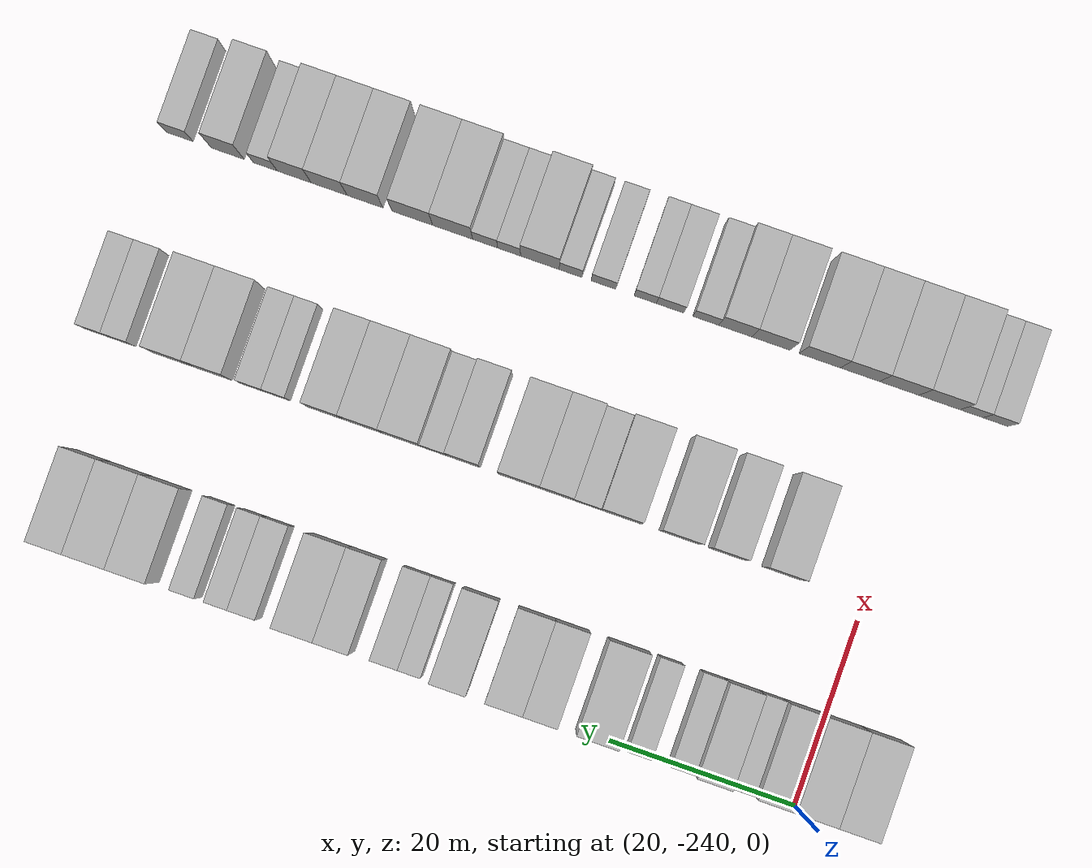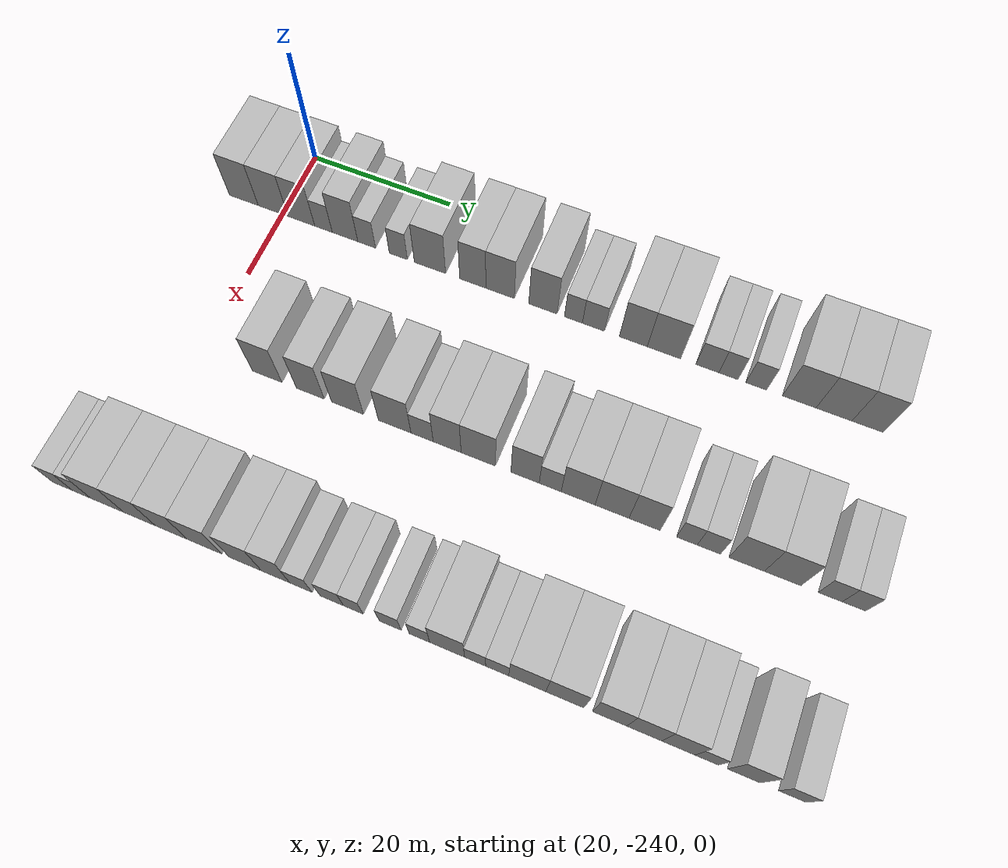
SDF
<sdf version="1.6">
 <world name="default">
  <model name="building_1">
   <static>1</static>
   <pose>25.0000 -245.8215 0 0.000000 0.000000 0.000000</pose>
   <link name="link">
    <pose>0 0 4.50 0 0 0</pose>
    <collision name="collision"><geometry><box><size>10.0000 4.3570 9.0000</size></box></geometry></collision>
    <visual name="visual">
     <cast_shadows>0</cast_shadows>
     <geometry><box><size>10.0000 4.3570 9.0000</size></box></geometry>
     <material>
      <script>
       <uri>model://HANNAS_wall/materials/scripts</uri>
       <uri>model://HANNAS_wall/materials/textures</uri>
       <name>vrc/HANNAS_wall</name>
      </script>
     </material>
    </visual>
   </link>
  </model>
  <model name="building_2">
   <static>1</static>
   <pose>25.0000 -241.4256 0 0.000000 0.000000 0.000000</pose>
   <link name="link">
    <pose>0 0 4.50 0 0 0</pose>
    <collision name="collision"><geometry><box><size>10.0000 4.4348 9.0000</size></box></geometry></collision>
    <visual name="visual">
     <cast_shadows>0</cast_shadows>
     <geometry><box><size>10.0000 4.4348 9.0000</size></box></geometry>
     <material>
      <script>
       <uri>model://HANNAS_wall/materials/scripts</uri>
       <uri>model://HANNAS_wall/materials/textures</uri>
       <name>vrc/HANNAS_wall</name>
      </script>
     </material>
    </visual>
   </link>
  </model>
  <model name="building_3">
   <static>1</static>
   <pose>25.0000 -237.2090 0 0.000000 0.000000 0.000000</pose>
   <link name="link">
    <pose>0 0 4.50 0 0 0</pose>
    <collision name="collision"><geometry><box><size>10.0000 3.9985 9.0000</size></box></geometry></collision>
    <visual name="visual">
     <cast_shadows>0</cast_shadows>
     <geometry><box><size>10.0000 3.9985 9.0000</size></box></geometry>
     <material>
      <script>
       <uri>model://HANNAS_wall/materials/scripts</uri>
       <uri>model://HANNAS_wall/materials/textures</uri>
       <name>vrc/HANNAS_wall</name>
      </script>
     </material>
    </visual>
   </link>
  </model>
  <model name="building_4">
   <static>1</static>
   <pose>25.0000 -233.9132 0 0.000000 0.000000 0.000000</pose>
   <link name="link">
    <pose>0 0 3.00 0 0 0</pose>
    <collision name="collision"><geometry><box><size>10.0000 2.5930 6.0000</size></box></geometry></collision>
    <visual name="visual">
     <cast_shadows>0</cast_shadows>
     <geometry><box><size>10.0000 2.5930 6.0000</size></box></geometry>
     <material>
      <script>
       <uri>model://HANNAS_wall/materials/scripts</uri>
       <uri>model://HANNAS_wall/materials/textures</uri>
       <name>vrc/HANNAS_wall</name>
      </script>
     </material>
    </visual>
   </link>
  </model>
  <model name="building_5">
   <static>1</static>
   <pose>25.0000 -230.7434 0 0.000000 0.000000 0.000000</pose>
   <link name="link">
    <pose>0 0 4.50 0 0 0</pose>
    <collision name="collision"><geometry><box><size>10.0000 3.7467 9.0000</size></box></geometry></collision>
    <visual name="visual">
     <cast_shadows>0</cast_shadows>
     <geometry><box><size>10.0000 3.7467 9.0000</size></box></geometry>
     <material>
      <script>
       <uri>model://HANNAS_wall/materials/scripts</uri>
       <uri>model://HANNAS_wall/materials/textures</uri>
       <name>vrc/HANNAS_wall</name>
      </script>
     </material>
    </visual>
   </link>
  </model>
  <model name="building_6">
   <static>1</static>
   <pose>25.0000 -227.5806 0 0.000000 0.000000 0.000000</pose>
   <link name="link">
    <pose>0 0 3.00 0 0 0</pose>
    <collision name="collision"><geometry><box><size>10.0000 2.5790 6.0000</size></box></geometry></collision>
    <visual name="visual">
     <cast_shadows>0</cast_shadows>
     <geometry><box><size>10.0000 2.5790 6.0000</size></box></geometry>
     <material>
      <script>
       <uri>model://HANNAS_wall/materials/scripts</uri>
       <uri>model://HANNAS_wall/materials/textures</uri>
       <name>vrc/HANNAS_wall</name>
      </script>
     </material>
    </visual>
   </link>
  </model>
  <model name="building_7">
   <static>1</static>
   <pose>25.0000 -222.9934 0 0.000000 0.000000 0.000000</pose>
   <link name="link">
    <pose>0 0 3.00 0 0 0</pose>
    <collision name="collision"><geometry><box><size>10.0000 2.5954 6.0000</size></box></geometry></collision>
    <visual name="visual">
     <cast_shadows>0</cast_shadows>
     <geometry><box><size>10.0000 2.5954 6.0000</size></box></geometry>
     <material>
      <script>
       <uri>model://HANNAS_wall/materials/scripts</uri>
       <uri>model://HANNAS_wall/materials/textures</uri>
       <name>vrc/HANNAS_wall</name>
      </script>
     </material>
    </visual>
   </link>
  </model>
  <model name="building_8">
   <static>1</static>
   <pose>25.0000 -218.4736 0 0.000000 0.000000 0.000000</pose>
   <link name="link">
    <pose>0 0 4.50 0 0 0</pose>
    <collision name="collision"><geometry><box><size>10.0000 4.4441 9.0000</size></box></geometry></collision>
    <visual name="visual">
     <cast_shadows>0</cast_shadows>
     <geometry><box><size>10.0000 4.4441 9.0000</size></box></geometry>
     <material>
      <script>
       <uri>model://HANNAS_wall/materials/scripts</uri>
       <uri>model://HANNAS_wall/materials/textures</uri>
       <name>vrc/HANNAS_wall</name>
      </script>
     </material>
    </visual>
   </link>
  </model>
  <model name="building_9">
   <static>1</static>
   <pose>25.0000 -212.4224 0 0.000000 0.000000 0.000000</pose>
   <link name="link">
    <pose>0 0 4.50 0 0 0</pose>
    <collision name="collision"><geometry><box><size>10.0000 3.6583 9.0000</size></box></geometry></collision>
    <visual name="visual">
     <cast_shadows>0</cast_shadows>
     <geometry><box><size>10.0000 3.6583 9.0000</size></box></geometry>
     <material>
      <script>
       <uri>model://HANNAS_wall/materials/scripts</uri>
       <uri>model://HANNAS_wall/materials/textures</uri>
       <name>vrc/HANNAS_wall</name>
      </script>
     </material>
    </visual>
   </link>
  </model>
  <model name="building_10">
   <static>1</static>
   <pose>25.0000 -208.6044 0 0.000000 0.000000 0.000000</pose>
   <link name="link">
    <pose>0 0 4.50 0 0 0</pose>
    <collision name="collision"><geometry><box><size>10.0000 3.9778 9.0000</size></box></geometry></collision>
    <visual name="visual">
     <cast_shadows>0</cast_shadows>
     <geometry><box><size>10.0000 3.9778 9.0000</size></box></geometry>
     <material>
      <script>
       <uri>model://HANNAS_wall/materials/scripts</uri>
       <uri>model://HANNAS_wall/materials/textures</uri>
       <name>vrc/HANNAS_wall</name>
      </script>
     </material>
    </visual>
   </link>
  </model>
  <model name="building_11">
   <static>1</static>
   <pose>25.0000 -202.6700 0 0.000000 0.000000 0.000000</pose>
   <link name="link">
    <pose>0 0 4.50 0 0 0</pose>
    <collision name="collision"><geometry><box><size>10.0000 3.8910 9.0000</size></box></geometry></collision>
    <visual name="visual">
     <cast_shadows>0</cast_shadows>
     <geometry><box><size>10.0000 3.8910 9.0000</size></box></geometry>
     <material>
      <script>
       <uri>model://HANNAS_wall/materials/scripts</uri>
       <uri>model://HANNAS_wall/materials/textures</uri>
       <name>vrc/HANNAS_wall</name>
      </script>
     </material>
    </visual>
   </link>
  </model>
  <model name="building_12">
   <static>1</static>
   <pose>25.0000 -198.5001 0 0.000000 0.000000 0.000000</pose>
   <link name="link">
    <pose>0 0 3.00 0 0 0</pose>
    <collision name="collision"><geometry><box><size>10.0000 2.4487 6.0000</size></box></geometry></collision>
    <visual name="visual">
     <cast_shadows>0</cast_shadows>
     <geometry><box><size>10.0000 2.4487 6.0000</size></box></geometry>
     <material>
      <script>
       <uri>model://HANNAS_wall/materials/scripts</uri>
       <uri>model://HANNAS_wall/materials/textures</uri>
       <name>vrc/HANNAS_wall</name>
      </script>
     </material>
    </visual>
   </link>
  </model>
  <model name="building_13">
   <static>1</static>
   <pose>25.0000 -195.7858 0 0.000000 0.000000 0.000000</pose>
   <link name="link">
    <pose>0 0 3.00 0 0 0</pose>
    <collision name="collision"><geometry><box><size>10.0000 2.9799 6.0000</size></box></geometry></collision>
    <visual name="visual">
     <cast_shadows>0</cast_shadows>
     <geometry><box><size>10.0000 2.9799 6.0000</size></box></geometry>
     <material>
      <script>
       <uri>model://HANNAS_wall/materials/scripts</uri>
       <uri>model://HANNAS_wall/materials/textures</uri>
       <name>vrc/HANNAS_wall</name>
      </script>
     </material>
    </visual>
   </link>
  </model>
  <model name="building_14">
   <static>1</static>
   <pose>25.0000 -190.4258 0 0.000000 0.000000 0.000000</pose>
   <link name="link">
    <pose>0 0 4.50 0 0 0</pose>
    <collision name="collision"><geometry><box><size>10.0000 3.7402 9.0000</size></box></geometry></collision>
    <visual name="visual">
     <cast_shadows>0</cast_shadows>
     <geometry><box><size>10.0000 3.7402 9.0000</size></box></geometry>
     <material>
      <script>
       <uri>model://HANNAS_wall/materials/scripts</uri>
       <uri>model://HANNAS_wall/materials/textures</uri>
       <name>vrc/HANNAS_wall</name>
      </script>
     </material>
    </visual>
   </link>
  </model>
  <model name="building_15">
   <static>1</static>
   <pose>25.0000 -186.3539 0 0.000000 0.000000 0.000000</pose>
   <link name="link">
    <pose>0 0 4.50 0 0 0</pose>
    <collision name="collision"><geometry><box><size>10.0000 4.4036 9.0000</size></box></geometry></collision>
    <visual name="visual">
     <cast_shadows>0</cast_shadows>
     <geometry><box><size>10.0000 4.4036 9.0000</size></box></geometry>
     <material>
      <script>
       <uri>model://HANNAS_wall/materials/scripts</uri>
       <uri>model://HANNAS_wall/materials/textures</uri>
       <name>vrc/HANNAS_wall</name>
      </script>
     </material>
    </visual>
   </link>
  </model>
  <model name="building_16">
   <static>1</static>
   <pose>25.0000 -180.6609 0 0.000000 0.000000 0.000000</pose>
   <link name="link">
    <pose>0 0 3.00 0 0 0</pose>
    <collision name="collision"><geometry><box><size>10.0000 2.9824 6.0000</size></box></geometry></collision>
    <visual name="visual">
     <cast_shadows>0</cast_shadows>
     <geometry><box><size>10.0000 2.9824 6.0000</size></box></geometry>
     <material>
      <script>
       <uri>model://HANNAS_wall/materials/scripts</uri>
       <uri>model://HANNAS_wall/materials/textures</uri>
       <name>vrc/HANNAS_wall</name>
      </script>
     </material>
    </visual>
   </link>
  </model>
  <model name="building_17">
   <static>1</static>
   <pose>25.0000 -177.9224 0 0.000000 0.000000 0.000000</pose>
   <link name="link">
    <pose>0 0 3.00 0 0 0</pose>
    <collision name="collision"><geometry><box><size>10.0000 2.4946 6.0000</size></box></geometry></collision>
    <visual name="visual">
     <cast_shadows>0</cast_shadows>
     <geometry><box><size>10.0000 2.4946 6.0000</size></box></geometry>
     <material>
      <script>
       <uri>model://HANNAS_wall/materials/scripts</uri>
       <uri>model://HANNAS_wall/materials/textures</uri>
       <name>vrc/HANNAS_wall</name>
      </script>
     </material>
    </visual>
   </link>
  </model>
  <model name="building_18">
   <static>1</static>
   <pose>25.0000 -174.3365 0 0.000000 0.000000 0.000000</pose>
   <link name="link">
    <pose>0 0 3.00 0 0 0</pose>
    <collision name="collision"><geometry><box><size>10.0000 2.6771 6.0000</size></box></geometry></collision>
    <visual name="visual">
     <cast_shadows>0</cast_shadows>
     <geometry><box><size>10.0000 2.6771 6.0000</size></box></geometry>
     <material>
      <script>
       <uri>model://HANNAS_wall/materials/scripts</uri>
       <uri>model://HANNAS_wall/materials/textures</uri>
       <name>vrc/HANNAS_wall</name>
      </script>
     </material>
    </visual>
   </link>
  </model>
  <model name="building_19">
   <static>1</static>
   <pose>25.0000 -168.8597 0 0.000000 0.000000 0.000000</pose>
   <link name="link">
    <pose>0 0 4.50 0 0 0</pose>
    <collision name="collision"><geometry><box><size>10.0000 4.2764 9.0000</size></box></geometry></collision>
    <visual name="visual">
     <cast_shadows>0</cast_shadows>
     <geometry><box><size>10.0000 4.2764 9.0000</size></box></geometry>
     <material>
      <script>
       <uri>model://HANNAS_wall/materials/scripts</uri>
       <uri>model://HANNAS_wall/materials/textures</uri>
       <name>vrc/HANNAS_wall</name>
      </script>
     </material>
    </visual>
   </link>
  </model>
  <model name="building_20">
   <static>1</static>
   <pose>25.0000 -164.4716 0 0.000000 0.000000 0.000000</pose>
   <link name="link">
    <pose>0 0 4.50 0 0 0</pose>
    <collision name="collision"><geometry><box><size>10.0000 4.4997 9.0000</size></box></geometry></collision>
    <visual name="visual">
     <cast_shadows>0</cast_shadows>
     <geometry><box><size>10.0000 4.4997 9.0000</size></box></geometry>
     <material>
      <script>
       <uri>model://HANNAS_wall/materials/scripts</uri>
       <uri>model://HANNAS_wall/materials/textures</uri>
       <name>vrc/HANNAS_wall</name>
      </script>
     </material>
    </visual>
   </link>
  </model>
  <model name="building_21">
   <static>1</static>
   <pose>25.0000 -160.2888 0 0.000000 0.000000 0.000000</pose>
   <link name="link">
    <pose>0 0 4.50 0 0 0</pose>
    <collision name="collision"><geometry><box><size>10.0000 3.8659 9.0000</size></box></geometry></collision>
    <visual name="visual">
     <cast_shadows>0</cast_shadows>
     <geometry><box><size>10.0000 3.8659 9.0000</size></box></geometry>
     <material>
      <script>
       <uri>model://HANNAS_wall/materials/scripts</uri>
       <uri>model://HANNAS_wall/materials/textures</uri>
       <name>vrc/HANNAS_wall</name>
      </script>
     </material>
    </visual>
   </link>
  </model>
  <model name="building_124">
   <static>1</static>
   <pose>47.0000 -230.8394 0 0.000000 0.000000 0.000000</pose>
   <link name="link">
    <pose>0 0 4.50 0 0 0</pose>
    <collision name="collision"><geometry><box><size>10.0000 4.1071 9.0000</size></box></geometry></collision>
    <visual name="visual">
     <cast_shadows>0</cast_shadows>
     <geometry><box><size>10.0000 4.1071 9.0000</size></box></geometry>
     <material>
      <script>
       <uri>model://HANNAS_wall/materials/scripts</uri>
       <uri>model://HANNAS_wall/materials/textures</uri>
       <name>vrc/HANNAS_wall</name>
      </script>
     </material>
    </visual>
   </link>
  </model>
  <model name="building_125">
   <static>1</static>
   <pose>47.0000 -224.8711 0 0.000000 0.000000 0.000000</pose>
   <link name="link">
    <pose>0 0 4.50 0 0 0</pose>
    <collision name="collision"><geometry><box><size>10.0000 3.8296 9.0000</size></box></geometry></collision>
    <visual name="visual">
     <cast_shadows>0</cast_shadows>
     <geometry><box><size>10.0000 3.8296 9.0000</size></box></geometry>
     <material>
      <script>
       <uri>model://HANNAS_wall/materials/scripts</uri>
       <uri>model://HANNAS_wall/materials/textures</uri>
       <name>vrc/HANNAS_wall</name>
      </script>
     </material>
    </visual>
   </link>
  </model>
  <model name="building_126">
   <static>1</static>
   <pose>47.0000 -219.7895 0 0.000000 0.000000 0.000000</pose>
   <link name="link">
    <pose>0 0 4.50 0 0 0</pose>
    <collision name="collision"><geometry><box><size>10.0000 4.3335 9.0000</size></box></geometry></collision>
    <visual name="visual">
     <cast_shadows>0</cast_shadows>
     <geometry><box><size>10.0000 4.3335 9.0000</size></box></geometry>
     <material>
      <script>
       <uri>model://HANNAS_wall/materials/scripts</uri>
       <uri>model://HANNAS_wall/materials/textures</uri>
       <name>vrc/HANNAS_wall</name>
      </script>
     </material>
    </visual>
   </link>
  </model>
  <model name="building_127">
   <static>1</static>
   <pose>47.0000 -213.4430 0 0.000000 0.000000 0.000000</pose>
   <link name="link">
    <pose>0 0 4.50 0 0 0</pose>
    <collision name="collision"><geometry><box><size>10.0000 4.3595 9.0000</size></box></geometry></collision>
    <visual name="visual">
     <cast_shadows>0</cast_shadows>
     <geometry><box><size>10.0000 4.3595 9.0000</size></box></geometry>
     <material>
      <script>
       <uri>model://HANNAS_wall/materials/scripts</uri>
       <uri>model://HANNAS_wall/materials/textures</uri>
       <name>vrc/HANNAS_wall</name>
      </script>
     </material>
    </visual>
   </link>
  </model>
  <model name="building_128">
   <static>1</static>
   <pose>47.0000 -209.7880 0 0.000000 0.000000 0.000000</pose>
   <link name="link">
    <pose>0 0 3.00 0 0 0</pose>
    <collision name="collision"><geometry><box><size>10.0000 2.9506 6.0000</size></box></geometry></collision>
    <visual name="visual">
     <cast_shadows>0</cast_shadows>
     <geometry><box><size>10.0000 2.9506 6.0000</size></box></geometry>
     <material>
      <script>
       <uri>model://HANNAS_wall/materials/scripts</uri>
       <uri>model://HANNAS_wall/materials/textures</uri>
       <name>vrc/HANNAS_wall</name>
      </script>
     </material>
    </visual>
   </link>
  </model>
  <model name="building_129">
   <static>1</static>
   <pose>47.0000 -206.4836 0 0.000000 0.000000 0.000000</pose>
   <link name="link">
    <pose>0 0 4.50 0 0 0</pose>
    <collision name="collision"><geometry><box><size>10.0000 3.6582 9.0000</size></box></geometry></collision>
    <visual name="visual">
     <cast_shadows>0</cast_shadows>
     <geometry><box><size>10.0000 3.6582 9.0000</size></box></geometry>
     <material>
      <script>
       <uri>model://HANNAS_wall/materials/scripts</uri>
       <uri>model://HANNAS_wall/materials/textures</uri>
       <name>vrc/HANNAS_wall</name>
      </script>
     </material>
    </visual>
   </link>
  </model>
  <model name="building_130">
   <static>1</static>
   <pose>47.0000 -202.4238 0 0.000000 0.000000 0.000000</pose>
   <link name="link">
    <pose>0 0 4.50 0 0 0</pose>
    <collision name="collision"><geometry><box><size>10.0000 4.4614 9.0000</size></box></geometry></collision>
    <visual name="visual">
     <cast_shadows>0</cast_shadows>
     <geometry><box><size>10.0000 4.4614 9.0000</size></box></geometry>
     <material>
      <script>
       <uri>model://HANNAS_wall/materials/scripts</uri>
       <uri>model://HANNAS_wall/materials/textures</uri>
       <name>vrc/HANNAS_wall</name>
      </script>
     </material>
    </visual>
   </link>
  </model>
  <model name="building_131">
   <static>1</static>
   <pose>47.0000 -196.3855 0 0.000000 0.000000 0.000000</pose>
   <link name="link">
    <pose>0 0 4.50 0 0 0</pose>
    <collision name="collision"><geometry><box><size>10.0000 3.6152 9.0000</size></box></geometry></collision>
    <visual name="visual">
     <cast_shadows>0</cast_shadows>
     <geometry><box><size>10.0000 3.6152 9.0000</size></box></geometry>
     <material>
      <script>
       <uri>model://HANNAS_wall/materials/scripts</uri>
       <uri>model://HANNAS_wall/materials/textures</uri>
       <name>vrc/HANNAS_wall</name>
      </script>
     </material>
    </visual>
   </link>
  </model>
  <model name="building_132">
   <static>1</static>
   <pose>47.0000 -193.1857 0 0.000000 0.000000 0.000000</pose>
   <link name="link">
    <pose>0 0 3.00 0 0 0</pose>
    <collision name="collision"><geometry><box><size>10.0000 2.7845 6.0000</size></box></geometry></collision>
    <visual name="visual">
     <cast_shadows>0</cast_shadows>
     <geometry><box><size>10.0000 2.7845 6.0000</size></box></geometry>
     <material>
      <script>
       <uri>model://HANNAS_wall/materials/scripts</uri>
       <uri>model://HANNAS_wall/materials/textures</uri>
       <name>vrc/HANNAS_wall</name>
      </script>
     </material>
    </visual>
   </link>
  </model>
  <model name="building_133">
   <static>1</static>
   <pose>47.0000 -189.6607 0 0.000000 0.000000 0.000000</pose>
   <link name="link">
    <pose>0 0 4.50 0 0 0</pose>
    <collision name="collision"><geometry><box><size>10.0000 4.2655 9.0000</size></box></geometry></collision>
    <visual name="visual">
     <cast_shadows>0</cast_shadows>
     <geometry><box><size>10.0000 4.2655 9.0000</size></box></geometry>
     <material>
      <script>
       <uri>model://HANNAS_wall/materials/scripts</uri>
       <uri>model://HANNAS_wall/materials/textures</uri>
       <name>vrc/HANNAS_wall</name>
      </script>
     </material>
    </visual>
   </link>
  </model>
  <model name="building_134">
   <static>1</static>
   <pose>47.0000 -185.4129 0 0.000000 0.000000 0.000000</pose>
   <link name="link">
    <pose>0 0 4.50 0 0 0</pose>
    <collision name="collision"><geometry><box><size>10.0000 4.2299 9.0000</size></box></geometry></collision>
    <visual name="visual">
     <cast_shadows>0</cast_shadows>
     <geometry><box><size>10.0000 4.2299 9.0000</size></box></geometry>
     <material>
      <script>
       <uri>model://HANNAS_wall/materials/scripts</uri>
       <uri>model://HANNAS_wall/materials/textures</uri>
       <name>vrc/HANNAS_wall</name>
      </script>
     </material>
    </visual>
   </link>
  </model>
  <model name="building_135">
   <static>1</static>
   <pose>47.0000 -181.3724 0 0.000000 0.000000 0.000000</pose>
   <link name="link">
    <pose>0 0 4.50 0 0 0</pose>
    <collision name="collision"><geometry><box><size>10.0000 3.8512 9.0000</size></box></geometry></collision>
    <visual name="visual">
     <cast_shadows>0</cast_shadows>
     <geometry><box><size>10.0000 3.8512 9.0000</size></box></geometry>
     <material>
      <script>
       <uri>model://HANNAS_wall/materials/scripts</uri>
       <uri>model://HANNAS_wall/materials/textures</uri>
       <name>vrc/HANNAS_wall</name>
      </script>
     </material>
    </visual>
   </link>
  </model>
  <model name="building_136">
   <static>1</static>
   <pose>47.0000 -176.1915 0 0.000000 0.000000 0.000000</pose>
   <link name="link">
    <pose>0 0 3.00 0 0 0</pose>
    <collision name="collision"><geometry><box><size>10.0000 2.5106 6.0000</size></box></geometry></collision>
    <visual name="visual">
     <cast_shadows>0</cast_shadows>
     <geometry><box><size>10.0000 2.5106 6.0000</size></box></geometry>
     <material>
      <script>
       <uri>model://HANNAS_wall/materials/scripts</uri>
       <uri>model://HANNAS_wall/materials/textures</uri>
       <name>vrc/HANNAS_wall</name>
      </script>
     </material>
    </visual>
   </link>
  </model>
  <model name="building_137">
   <static>1</static>
   <pose>47.0000 -173.5220 0 0.000000 0.000000 0.000000</pose>
   <link name="link">
    <pose>0 0 3.00 0 0 0</pose>
    <collision name="collision"><geometry><box><size>10.0000 2.8283 6.0000</size></box></geometry></collision>
    <visual name="visual">
     <cast_shadows>0</cast_shadows>
     <geometry><box><size>10.0000 2.8283 6.0000</size></box></geometry>
     <material>
      <script>
       <uri>model://HANNAS_wall/materials/scripts</uri>
       <uri>model://HANNAS_wall/materials/textures</uri>
       <name>vrc/HANNAS_wall</name>
      </script>
     </material>
    </visual>
   </link>
  </model>
  <model name="building_138">
   <static>1</static>
   <pose>47.0000 -168.9888 0 0.000000 0.000000 0.000000</pose>
   <link name="link">
    <pose>0 0 4.50 0 0 0</pose>
    <collision name="collision"><geometry><box><size>10.0000 4.2382 9.0000</size></box></geometry></collision>
    <visual name="visual">
     <cast_shadows>0</cast_shadows>
     <geometry><box><size>10.0000 4.2382 9.0000</size></box></geometry>
     <material>
      <script>
       <uri>model://HANNAS_wall/materials/scripts</uri>
       <uri>model://HANNAS_wall/materials/textures</uri>
       <name>vrc/HANNAS_wall</name>
      </script>
     </material>
    </visual>
   </link>
  </model>
  <model name="building_139">
   <static>1</static>
   <pose>47.0000 -164.7018 0 0.000000 0.000000 0.000000</pose>
   <link name="link">
    <pose>0 0 4.50 0 0 0</pose>
    <collision name="collision"><geometry><box><size>10.0000 4.3357 9.0000</size></box></geometry></collision>
    <visual name="visual">
     <cast_shadows>0</cast_shadows>
     <geometry><box><size>10.0000 4.3357 9.0000</size></box></geometry>
     <material>
      <script>
       <uri>model://HANNAS_wall/materials/scripts</uri>
       <uri>model://HANNAS_wall/materials/textures</uri>
       <name>vrc/HANNAS_wall</name>
      </script>
     </material>
    </visual>
   </link>
  </model>
  <model name="building_140">
   <static>1</static>
   <pose>47.0000 -159.1398 0 0.000000 0.000000 0.000000</pose>
   <link name="link">
    <pose>0 0 3.00 0 0 0</pose>
    <collision name="collision"><geometry><box><size>10.0000 2.7884 6.0000</size></box></geometry></collision>
    <visual name="visual">
     <cast_shadows>0</cast_shadows>
     <geometry><box><size>10.0000 2.7884 6.0000</size></box></geometry>
     <material>
      <script>
       <uri>model://HANNAS_wall/materials/scripts</uri>
       <uri>model://HANNAS_wall/materials/textures</uri>
       <name>vrc/HANNAS_wall</name>
      </script>
     </material>
    </visual>
   </link>
  </model>
  <model name="building_141">
   <static>1</static>
   <pose>47.0000 -156.3905 0 0.000000 0.000000 0.000000</pose>
   <link name="link">
    <pose>0 0 3.00 0 0 0</pose>
    <collision name="collision"><geometry><box><size>10.0000 2.7101 6.0000</size></box></geometry></collision>
    <visual name="visual">
     <cast_shadows>0</cast_shadows>
     <geometry><box><size>10.0000 2.7101 6.0000</size></box></geometry>
     <material>
      <script>
       <uri>model://HANNAS_wall/materials/scripts</uri>
       <uri>model://HANNAS_wall/materials/textures</uri>
       <name>vrc/HANNAS_wall</name>
      </script>
     </material>
    </visual>
   </link>
  </model>
  <model name="building_246">
   <static>1</static>
   <pose>69.0000 -246.6401 0 0.000000 0.000000 0.000000</pose>
   <link name="link">
    <pose>0 0 3.00 0 0 0</pose>
    <collision name="collision"><geometry><box><size>10.0000 2.7199 6.0000</size></box></geometry></collision>
    <visual name="visual">
     <cast_shadows>0</cast_shadows>
     <geometry><box><size>10.0000 2.7199 6.0000</size></box></geometry>
     <material>
      <script>
       <uri>model://HANNAS_wall/materials/scripts</uri>
       <uri>model://HANNAS_wall/materials/textures</uri>
       <name>vrc/HANNAS_wall</name>
      </script>
     </material>
    </visual>
   </link>
  </model>
  <model name="building_247">
   <static>1</static>
   <pose>69.0000 -244.0254 0 0.000000 0.000000 0.000000</pose>
   <link name="link">
    <pose>0 0 3.00 0 0 0</pose>
    <collision name="collision"><geometry><box><size>10.0000 2.5094 6.0000</size></box></geometry></collision>
    <visual name="visual">
     <cast_shadows>0</cast_shadows>
     <geometry><box><size>10.0000 2.5094 6.0000</size></box></geometry>
     <material>
      <script>
       <uri>model://HANNAS_wall/materials/scripts</uri>
       <uri>model://HANNAS_wall/materials/textures</uri>
       <name>vrc/HANNAS_wall</name>
      </script>
     </material>
    </visual>
   </link>
  </model>
  <model name="building_248">
   <static>1</static>
   <pose>69.0000 -240.5340 0 0.000000 0.000000 0.000000</pose>
   <link name="link">
    <pose>0 0 4.50 0 0 0</pose>
    <collision name="collision"><geometry><box><size>10.0000 4.4733 9.0000</size></box></geometry></collision>
    <visual name="visual">
     <cast_shadows>0</cast_shadows>
     <geometry><box><size>10.0000 4.4733 9.0000</size></box></geometry>
     <material>
      <script>
       <uri>model://HANNAS_wall/materials/scripts</uri>
       <uri>model://HANNAS_wall/materials/textures</uri>
       <name>vrc/HANNAS_wall</name>
      </script>
     </material>
    </visual>
   </link>
  </model>
  <model name="building_249">
   <static>1</static>
   <pose>69.0000 -236.1596 0 0.000000 0.000000 0.000000</pose>
   <link name="link">
    <pose>0 0 4.50 0 0 0</pose>
    <collision name="collision"><geometry><box><size>10.0000 4.2756 9.0000</size></box></geometry></collision>
    <visual name="visual">
     <cast_shadows>0</cast_shadows>
     <geometry><box><size>10.0000 4.2756 9.0000</size></box></geometry>
     <material>
      <script>
       <uri>model://HANNAS_wall/materials/scripts</uri>
       <uri>model://HANNAS_wall/materials/textures</uri>
       <name>vrc/HANNAS_wall</name>
      </script>
     </material>
    </visual>
   </link>
  </model>
  <model name="building_250">
   <static>1</static>
   <pose>69.0000 -231.8988 0 0.000000 0.000000 0.000000</pose>
   <link name="link">
    <pose>0 0 4.50 0 0 0</pose>
    <collision name="collision"><geometry><box><size>10.0000 4.2460 9.0000</size></box></geometry></collision>
    <visual name="visual">
     <cast_shadows>0</cast_shadows>
     <geometry><box><size>10.0000 4.2460 9.0000</size></box></geometry>
     <material>
      <script>
       <uri>model://HANNAS_wall/materials/scripts</uri>
       <uri>model://HANNAS_wall/materials/textures</uri>
       <name>vrc/HANNAS_wall</name>
      </script>
     </material>
    </visual>
   </link>
  </model>
  <model name="building_251">
   <static>1</static>
   <pose>69.0000 -227.5280 0 0.000000 0.000000 0.000000</pose>
   <link name="link">
    <pose>0 0 4.50 0 0 0</pose>
    <collision name="collision"><geometry><box><size>10.0000 4.4956 9.0000</size></box></geometry></collision>
    <visual name="visual">
     <cast_shadows>0</cast_shadows>
     <geometry><box><size>10.0000 4.4956 9.0000</size></box></geometry>
     <material>
      <script>
       <uri>model://HANNAS_wall/materials/scripts</uri>
       <uri>model://HANNAS_wall/materials/textures</uri>
       <name>vrc/HANNAS_wall</name>
      </script>
     </material>
    </visual>
   </link>
  </model>
  <model name="building_252">
   <static>1</static>
   <pose>69.0000 -222.1951 0 0.000000 0.000000 0.000000</pose>
   <link name="link">
    <pose>0 0 4.50 0 0 0</pose>
    <collision name="collision"><geometry><box><size>10.0000 4.1702 9.0000</size></box></geometry></collision>
    <visual name="visual">
     <cast_shadows>0</cast_shadows>
     <geometry><box><size>10.0000 4.1702 9.0000</size></box></geometry>
     <material>
      <script>
       <uri>model://HANNAS_wall/materials/scripts</uri>
       <uri>model://HANNAS_wall/materials/textures</uri>
       <name>vrc/HANNAS_wall</name>
      </script>
     </material>
    </visual>
   </link>
  </model>
  <model name="building_253">
   <static>1</static>
   <pose>69.0000 -218.2999 0 0.000000 0.000000 0.000000</pose>
   <link name="link">
    <pose>0 0 4.50 0 0 0</pose>
    <collision name="collision"><geometry><box><size>10.0000 3.6202 9.0000</size></box></geometry></collision>
    <visual name="visual">
     <cast_shadows>0</cast_shadows>
     <geometry><box><size>10.0000 3.6202 9.0000</size></box></geometry>
     <material>
      <script>
       <uri>model://HANNAS_wall/materials/scripts</uri>
       <uri>model://HANNAS_wall/materials/textures</uri>
       <name>vrc/HANNAS_wall</name>
      </script>
     </material>
    </visual>
   </link>
  </model>
  <model name="building_254">
   <static>1</static>
   <pose>69.0000 -215.0726 0 0.000000 0.000000 0.000000</pose>
   <link name="link">
    <pose>0 0 3.00 0 0 0</pose>
    <collision name="collision"><geometry><box><size>10.0000 2.8345 6.0000</size></box></geometry></collision>
    <visual name="visual">
     <cast_shadows>0</cast_shadows>
     <geometry><box><size>10.0000 2.8345 6.0000</size></box></geometry>
     <material>
      <script>
       <uri>model://HANNAS_wall/materials/scripts</uri>
       <uri>model://HANNAS_wall/materials/textures</uri>
       <name>vrc/HANNAS_wall</name>
      </script>
     </material>
    </visual>
   </link>
  </model>
  <model name="building_255">
   <static>1</static>
   <pose>69.0000 -211.1582 0 0.000000 0.000000 0.000000</pose>
   <link name="link">
    <pose>0 0 3.00 0 0 0</pose>
    <collision name="collision"><geometry><box><size>10.0000 2.9943 6.0000</size></box></geometry></collision>
    <visual name="visual">
     <cast_shadows>0</cast_shadows>
     <geometry><box><size>10.0000 2.9943 6.0000</size></box></geometry>
     <material>
      <script>
       <uri>model://HANNAS_wall/materials/scripts</uri>
       <uri>model://HANNAS_wall/materials/textures</uri>
       <name>vrc/HANNAS_wall</name>
      </script>
     </material>
    </visual>
   </link>
  </model>
  <model name="building_256">
   <static>1</static>
   <pose>69.0000 -208.4508 0 0.000000 0.000000 0.000000</pose>
   <link name="link">
    <pose>0 0 3.00 0 0 0</pose>
    <collision name="collision"><geometry><box><size>10.0000 2.4206 6.0000</size></box></geometry></collision>
    <visual name="visual">
     <cast_shadows>0</cast_shadows>
     <geometry><box><size>10.0000 2.4206 6.0000</size></box></geometry>
     <material>
      <script>
       <uri>model://HANNAS_wall/materials/scripts</uri>
       <uri>model://HANNAS_wall/materials/textures</uri>
       <name>vrc/HANNAS_wall</name>
      </script>
     </material>
    </visual>
   </link>
  </model>
  <model name="building_257">
   <static>1</static>
   <pose>69.0000 -203.8953 0 0.000000 0.000000 0.000000</pose>
   <link name="link">
    <pose>0 0 3.00 0 0 0</pose>
    <collision name="collision"><geometry><box><size>10.0000 2.6905 6.0000</size></box></geometry></collision>
    <visual name="visual">
     <cast_shadows>0</cast_shadows>
     <geometry><box><size>10.0000 2.6905 6.0000</size></box></geometry>
     <material>
      <script>
       <uri>model://HANNAS_wall/materials/scripts</uri>
       <uri>model://HANNAS_wall/materials/textures</uri>
       <name>vrc/HANNAS_wall</name>
      </script>
     </material>
    </visual>
   </link>
  </model>
  <model name="building_258">
   <static>1</static>
   <pose>69.0000 -200.2997 0 0.000000 0.000000 0.000000</pose>
   <link name="link">
    <pose>0 0 3.00 0 0 0</pose>
    <collision name="collision"><geometry><box><size>10.0000 2.5006 6.0000</size></box></geometry></collision>
    <visual name="visual">
     <cast_shadows>0</cast_shadows>
     <geometry><box><size>10.0000 2.5006 6.0000</size></box></geometry>
     <material>
      <script>
       <uri>model://HANNAS_wall/materials/scripts</uri>
       <uri>model://HANNAS_wall/materials/textures</uri>
       <name>vrc/HANNAS_wall</name>
      </script>
     </material>
    </visual>
   </link>
  </model>
  <model name="building_259">
   <static>1</static>
   <pose>69.0000 -196.9405 0 0.000000 0.000000 0.000000</pose>
   <link name="link">
    <pose>0 0 4.50 0 0 0</pose>
    <collision name="collision"><geometry><box><size>10.0000 4.2178 9.0000</size></box></geometry></collision>
    <visual name="visual">
     <cast_shadows>0</cast_shadows>
     <geometry><box><size>10.0000 4.2178 9.0000</size></box></geometry>
     <material>
      <script>
       <uri>model://HANNAS_wall/materials/scripts</uri>
       <uri>model://HANNAS_wall/materials/textures</uri>
       <name>vrc/HANNAS_wall</name>
      </script>
     </material>
    </visual>
   </link>
  </model>
  <model name="building_260">
   <static>1</static>
   <pose>69.0000 -193.5790 0 0.000000 0.000000 0.000000</pose>
   <link name="link">
    <pose>0 0 3.00 0 0 0</pose>
    <collision name="collision"><geometry><box><size>10.0000 2.5052 6.0000</size></box></geometry></collision>
    <visual name="visual">
     <cast_shadows>0</cast_shadows>
     <geometry><box><size>10.0000 2.5052 6.0000</size></box></geometry>
     <material>
      <script>
       <uri>model://HANNAS_wall/materials/scripts</uri>
       <uri>model://HANNAS_wall/materials/textures</uri>
       <name>vrc/HANNAS_wall</name>
      </script>
     </material>
    </visual>
   </link>
  </model>
  <model name="building_261">
   <static>1</static>
   <pose>69.0000 -190.9541 0 0.000000 0.000000 0.000000</pose>
   <link name="link">
    <pose>0 0 3.00 0 0 0</pose>
    <collision name="collision"><geometry><box><size>10.0000 2.7448 6.0000</size></box></geometry></collision>
    <visual name="visual">
     <cast_shadows>0</cast_shadows>
     <geometry><box><size>10.0000 2.7448 6.0000</size></box></geometry>
     <material>
      <script>
       <uri>model://HANNAS_wall/materials/scripts</uri>
       <uri>model://HANNAS_wall/materials/textures</uri>
       <name>vrc/HANNAS_wall</name>
      </script>
     </material>
    </visual>
   </link>
  </model>
  <model name="building_262">
   <static>1</static>
   <pose>69.0000 -187.3943 0 0.000000 0.000000 0.000000</pose>
   <link name="link">
    <pose>0 0 4.50 0 0 0</pose>
    <collision name="collision"><geometry><box><size>10.0000 4.3748 9.0000</size></box></geometry></collision>
    <visual name="visual">
     <cast_shadows>0</cast_shadows>
     <geometry><box><size>10.0000 4.3748 9.0000</size></box></geometry>
     <material>
      <script>
       <uri>model://HANNAS_wall/materials/scripts</uri>
       <uri>model://HANNAS_wall/materials/textures</uri>
       <name>vrc/HANNAS_wall</name>
      </script>
     </material>
    </visual>
   </link>
  </model>
  <model name="building_263">
   <static>1</static>
   <pose>69.0000 -182.9893 0 0.000000 0.000000 0.000000</pose>
   <link name="link">
    <pose>0 0 4.50 0 0 0</pose>
    <collision name="collision"><geometry><box><size>10.0000 4.4353 9.0000</size></box></geometry></collision>
    <visual name="visual">
     <cast_shadows>0</cast_shadows>
     <geometry><box><size>10.0000 4.4353 9.0000</size></box></geometry>
     <material>
      <script>
       <uri>model://HANNAS_wall/materials/scripts</uri>
       <uri>model://HANNAS_wall/materials/textures</uri>
       <name>vrc/HANNAS_wall</name>
      </script>
     </material>
    </visual>
   </link>
  </model>
  <model name="building_264">
   <static>1</static>
   <pose>69.0000 -177.7998 0 0.000000 0.000000 0.000000</pose>
   <link name="link">
    <pose>0 0 4.50 0 0 0</pose>
    <collision name="collision"><geometry><box><size>10.0000 3.9436 9.0000</size></box></geometry></collision>
    <visual name="visual">
     <cast_shadows>0</cast_shadows>
     <geometry><box><size>10.0000 3.9436 9.0000</size></box></geometry>
     <material>
      <script>
       <uri>model://HANNAS_wall/materials/scripts</uri>
       <uri>model://HANNAS_wall/materials/textures</uri>
       <name>vrc/HANNAS_wall</name>
      </script>
     </material>
    </visual>
   </link>
  </model>
  <model name="building_265">
   <static>1</static>
   <pose>69.0000 -173.8559 0 0.000000 0.000000 0.000000</pose>
   <link name="link">
    <pose>0 0 4.50 0 0 0</pose>
    <collision name="collision"><geometry><box><size>10.0000 3.9443 9.0000</size></box></geometry></collision>
    <visual name="visual">
     <cast_shadows>0</cast_shadows>
     <geometry><box><size>10.0000 3.9443 9.0000</size></box></geometry>
     <material>
      <script>
       <uri>model://HANNAS_wall/materials/scripts</uri>
       <uri>model://HANNAS_wall/materials/textures</uri>
       <name>vrc/HANNAS_wall</name>
      </script>
     </material>
    </visual>
   </link>
  </model>
  <model name="building_266">
   <static>1</static>
   <pose>69.0000 -170.0216 0 0.000000 0.000000 0.000000</pose>
   <link name="link">
    <pose>0 0 4.50 0 0 0</pose>
    <collision name="collision"><geometry><box><size>10.0000 3.7244 9.0000</size></box></geometry></collision>
    <visual name="visual">
     <cast_shadows>0</cast_shadows>
     <geometry><box><size>10.0000 3.7244 9.0000</size></box></geometry>
     <material>
      <script>
       <uri>model://HANNAS_wall/materials/scripts</uri>
       <uri>model://HANNAS_wall/materials/textures</uri>
       <name>vrc/HANNAS_wall</name>
      </script>
     </material>
    </visual>
   </link>
  </model>
  <model name="building_267">
   <static>1</static>
   <pose>69.0000 -166.8434 0 0.000000 0.000000 0.000000</pose>
   <link name="link">
    <pose>0 0 3.00 0 0 0</pose>
    <collision name="collision"><geometry><box><size>10.0000 2.6319 6.0000</size></box></geometry></collision>
    <visual name="visual">
     <cast_shadows>0</cast_shadows>
     <geometry><box><size>10.0000 2.6319 6.0000</size></box></geometry>
     <material>
      <script>
       <uri>model://HANNAS_wall/materials/scripts</uri>
       <uri>model://HANNAS_wall/materials/textures</uri>
       <name>vrc/HANNAS_wall</name>
      </script>
     </material>
    </visual>
   </link>
  </model>
  <model name="building_268">
   <static>1</static>
   <pose>69.0000 -162.7230 0 0.000000 0.000000 0.000000</pose>
   <link name="link">
    <pose>0 0 4.50 0 0 0</pose>
    <collision name="collision"><geometry><box><size>10.0000 3.6091 9.0000</size></box></geometry></collision>
    <visual name="visual">
     <cast_shadows>0</cast_shadows>
     <geometry><box><size>10.0000 3.6091 9.0000</size></box></geometry>
     <material>
      <script>
       <uri>model://HANNAS_wall/materials/scripts</uri>
       <uri>model://HANNAS_wall/materials/textures</uri>
       <name>vrc/HANNAS_wall</name>
      </script>
     </material>
    </visual>
   </link>
  </model>
  <model name="building_269">
   <static>1</static>
   <pose>69.0000 -157.4409 0 0.000000 0.000000 0.000000</pose>
   <link name="link">
    <pose>0 0 3.00 0 0 0</pose>
    <collision name="collision"><geometry><box><size>10.0000 2.9551 6.0000</size></box></geometry></collision>
    <visual name="visual">
     <cast_shadows>0</cast_shadows>
     <geometry><box><size>10.0000 2.9551 6.0000</size></box></geometry>
     <material>
      <script>
       <uri>model://HANNAS_wall/materials/scripts</uri>
       <uri>model://HANNAS_wall/materials/textures</uri>
       <name>vrc/HANNAS_wall</name>
      </script>
     </material>
    </visual>
   </link>
  </model>
 </world>
</sdf>
